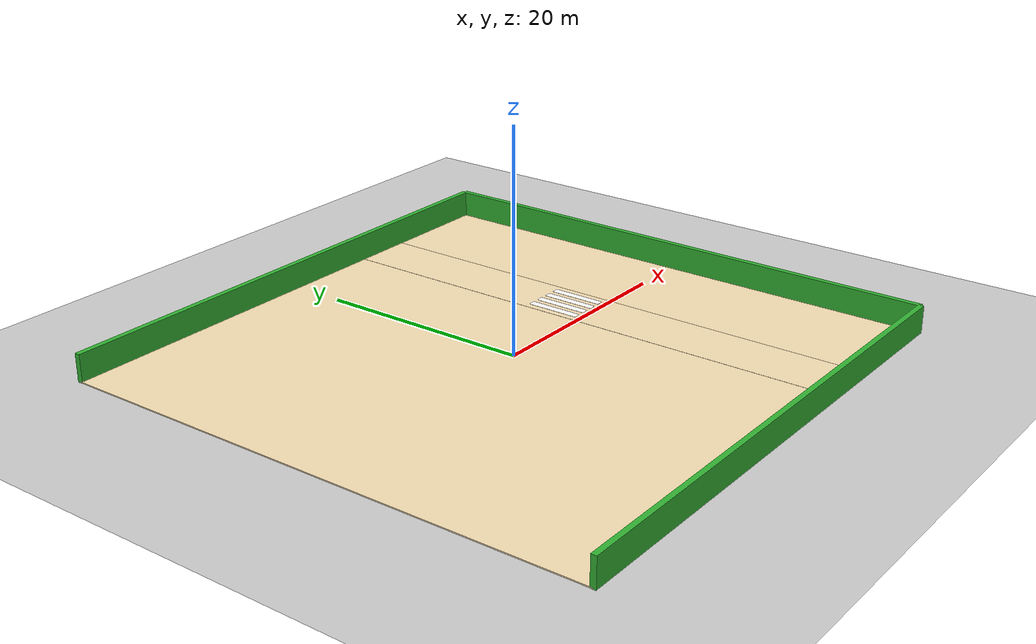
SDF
<sdf version="1.6">
 <world name="default">
  <plugin filename="gz-sim-physics-system" name="gz::sim::systems::Physics"/>
  <plugin filename="gz-sim-user-commands-system" name="gz::sim::systems::UserCommands"/>
  <plugin filename="gz-sim-scene-broadcaster-system" name="gz::sim::systems::SceneBroadcaster"/>
  <plugin filename="gz-sim-sensors-system" name="gz::sim::systems::Sensors">
   <render_engine>ogre2</render_engine>
  </plugin>
  <plugin filename="gz-sim-imu-system" name="gz::sim::systems::Imu"/>
  <physics type="ode">
   <max_step_size>0.003</max_step_size>
   <real_time_update_rate>400</real_time_update_rate>
  </physics>
  <light type="directional" name="sun">
   <pose>0 0 10 0 0 0</pose>
   <diffuse>1 1 1 1</diffuse>
   <specular>0.5 0.5 0.5 1</specular>
   <attenuation>
    <range>1000</range>
    <constant>0.9</constant>
    <linear>0.01</linear>
    <quadratic>0.001</quadratic>
   </attenuation>
   <direction>-0.5 0.1 -0.9</direction>
  </light>
  <model name="ground_plane">
   <static>true</static>
   <link name="link">
    <collision name="collision">
     <geometry><plane><normal>0 0 1</normal><size>100 100</size></plane></geometry>
     <surface><friction><ode><mu>0.0</mu><mu2>0.0</mu2></ode></friction></surface>
    </collision>
    <visual name="visual">
     <geometry><plane><normal>0 0 1</normal><size>100 100</size></plane></geometry>
     <material>
      <ambient>0.8 0.8 0.8 1</ambient>
      <diffuse>0.8 0.8 0.8 1</diffuse>
      <specular>0.8 0.8 0.8 1</specular>
     </material>
    </visual>
   </link>
  </model>
  <model name="back_wall">
   <static>true</static>
   <pose>25 0 0 0 0 -1.5708</pose>
   <link name="wall_link">
    <visual name="wall_visual">
     <geometry><box><size>50 0.5 5</size></box></geometry>
     <material>
      <ambient>0.1 0.4 0.1 1</ambient>
      <diffuse>0.2 0.7 0.2 1</diffuse>
      <specular>0.1 0.1 0.1 1</specular>
     </material>
    </visual>
   </link>
  </model>
  <model name="left_wall">
   <static>true</static>
   <pose>0 25 0 0 0 0</pose>
   <link name="wall_link">
    <visual name="wall_visual">
     <geometry><box><size>50 0.5 5</size></box></geometry>
     <material>
      <ambient>0.1 0.4 0.1 1</ambient>
      <diffuse>0.2 0.7 0.2 1</diffuse>
      <specular>0.1 0.1 0.1 1</specular>
     </material>
    </visual>
   </link>
  </model>
  <model name="right_wall">
   <static>true</static>
   <pose>0 -25 0 0 0 0</pose>
   <link name="wall_link">
    <visual name="wall_visual">
     <geometry><box><size>50 0.5 5</size></box></geometry>
     <material>
      <ambient>0.1 0.4 0.1 1</ambient>
      <diffuse>0.2 0.7 0.2 1</diffuse>
      <specular>0.1 0.1 0.1 1</specular>
     </material>
    </visual>
   </link>
  </model>
  <model name="floor">
   <static>true</static>
   <link name="floor_link">
    <collision name="floor_collision">
     <geometry><box><size>50 50 0.1</size></box></geometry>
     <surface><friction><ode><mu>1.0</mu><mu2>1.0</mu2></ode></friction></surface>
    </collision>
    <visual name="floor_visual">
     <geometry><box><size>50 50 0.1</size></box></geometry>
     <material>
      <ambient>0.76 0.70 0.50 1</ambient>
      <diffuse>0.96 0.87 0.70 1</diffuse>
      <specular>0.2 0.2 0.2 1</specular>
     </material>
    </visual>
   </link>
  </model>
  <model name="road">
   <static>true</static>
   <pose>11.8 0 0.05 0 0 0</pose>
   <link name="road_link">
    <visual name="road_visual">
     <geometry><box><size>5.5 50 0.02</size></box></geometry>
     <material>
      <ambient>0.76 0.70 0.50 1</ambient>
      <diffuse>0.96 0.87 0.70 1</diffuse>
      <specular>0.2 0.2 0.2 1</specular>
     </material>
    </visual>
   </link>
  </model>
  <model name="pedestrian_crossing">
   <static>true</static>
   <pose>10 3 0.07 0 0 0</pose>
   <link name="crossing_link">
    <visual name="stripe1">
     <geometry><box><size>0.7 5 0.01</size></box></geometry>
     <material><ambient>1 1 1 1</ambient><diffuse>1 1 1 1</diffuse><specular>0.2 0.2 0.2 1</specular></material>
    </visual>
    <visual name="stripe2">
     <pose>1.2 0 0 0 0 0</pose>
     <geometry><box><size>0.7 5 0.01</size></box></geometry>
     <material><ambient>1 1 1 1</ambient><diffuse>1 1 1 1</diffuse><specular>0.2 0.2 0.2 1</specular></material>
    </visual>
    <visual name="stripe3">
     <pose>2.4 0 0 0 0 0</pose>
     <geometry><box><size>0.7 5 0.01</size></box></geometry>
     <material><ambient>1 1 1 1</ambient><diffuse>1 1 1 1</diffuse><specular>0.2 0.2 0.2 1</specular></material>
    </visual>
    <visual name="stripe4">
     <pose>3.6 0 0 0 0 0</pose>
     <geometry><box><size>0.7 5 0.01</size></box></geometry>
     <material><ambient>1 1 1 1</ambient><diffuse>1 1 1 1</diffuse><specular>0.2 0.2 0.2 1</specular></material>
    </visual>
   </link>
  </model>
 </world>
</sdf>
